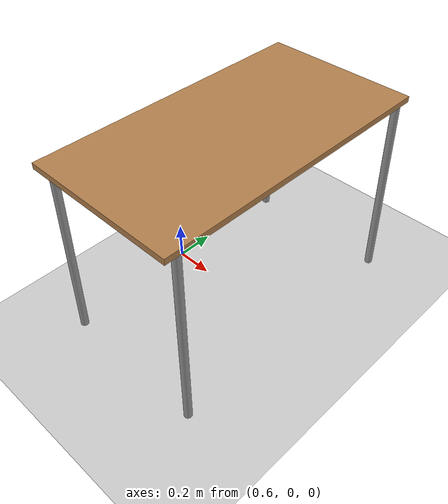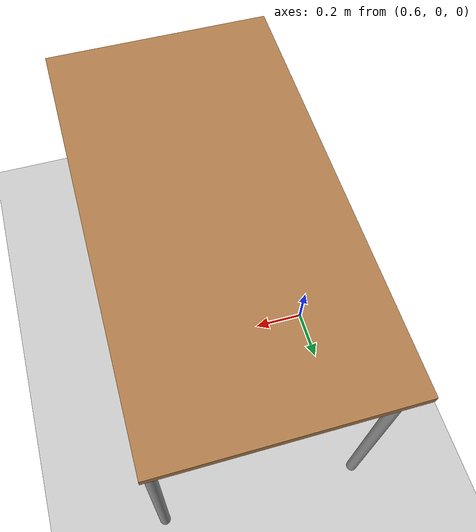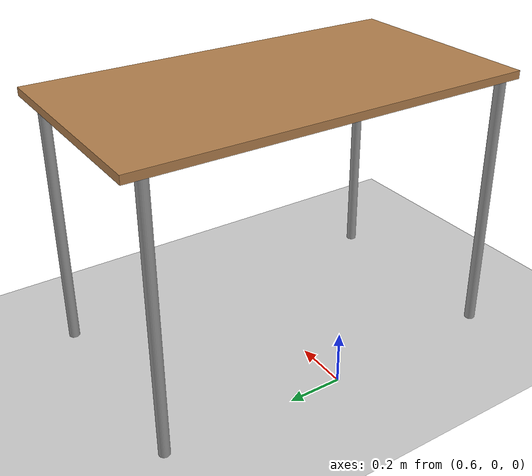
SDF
<sdf version="1.6">
 <world name="default">
  <include><uri>model://ground_plane</uri></include>
  <include><uri>model://sun</uri></include>
  <include><uri>model://table</uri><pose>1.0 0.0 0.0 0 0 1.57</pose><static>true</static></include>
  <physics type="ode">
   <max_step_size>0.001</max_step_size>
   <real_time_update_rate>0</real_time_update_rate>
   <gravity>0 0 -9.8</gravity>
   <ode>
    <solver><island_threads>1</island_threads><thread_position_correction>1</thread_position_correction></solver>
   </ode>
  </physics>
 </world>
</sdf>

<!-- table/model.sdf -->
<sdf version="1.5">
  <model name="table">
    <static>true</static>
    <link name="link">
      <collision name="surface">
        <pose>0 0 1.0 0 0 0</pose>
        <geometry>
          <box>
            <size>1.5 0.8 0.03</size>
          </box>
        </geometry>
        <surface>
          <friction>
            <ode>
              <mu>0.6</mu>
              <mu2>0.6</mu2>
            </ode>
          </friction>
        </surface>
      </collision>
      <visual name="visual1">
        <pose>0 0 1.0 0 0 0</pose>
        <geometry>
          <box>
            <size>1.5 0.8 0.03</size>
          </box>
        </geometry>
        <material>
          <script>
            <uri>model://media/materials/scripts/gazebo.material</uri>
            <name>Gazebo/Wood</name>
          </script>
        </material>
      </visual>
      <collision name="front_left_leg">
        <pose>0.68 0.38 0.5 0 0 0</pose>
        <geometry>
          <cylinder>
            <radius>0.02</radius>
            <length>1.0</length>
          </cylinder>
        </geometry>
      </collision>
      <visual name="front_left_leg">
        <pose>0.68 0.38 0.5 0 0 0</pose>
        <geometry>
          <cylinder>
            <radius>0.02</radius>
            <length>1.0</length>
          </cylinder>
        </geometry>
        <material>
          <script>
            <uri>model://media/materials/scripts/gazebo.material</uri>
            <name>Gazebo/Grey</name>
          </script>
        </material>
      </visual>
      <collision name="front_right_leg">
        <pose>0.68 -0.38 0.5 0 0 0</pose>
        <geometry>
          <cylinder>
            <radius>0.02</radius>
            <length>1.0</length>
          </cylinder>
        </geometry>
      </collision>
      <visual name="front_right_leg">
        <pose>0.68 -0.38 0.5 0 0 0</pose>
        <geometry>
          <cylinder>
            <radius>0.02</radius>
            <length>1.0</length>
          </cylinder>
        </geometry>
        <material>
          <script>
            <uri>model://media/materials/scripts/gazebo.material</uri>
            <name>Gazebo/Grey</name>
          </script>
        </material>
      </visual>
      <collision name="back_right_leg">
        <pose>-0.68 -0.38 0.5 0 0 0</pose>
        <geometry>
          <cylinder>
            <radius>0.02</radius>
            <length>1.0</length>
          </cylinder>
        </geometry>
      </collision>
      <visual name="back_right_leg">
        <pose>-0.68 -0.38 0.5 0 0 0</pose>
        <geometry>
          <cylinder>
            <radius>0.02</radius>
            <length>1.0</length>
          </cylinder>
        </geometry>
        <material>
          <script>
            <uri>model://media/materials/scripts/gazebo.material</uri>
            <name>Gazebo/Grey</name>
          </script>
        </material>
      </visual>
      <collision name="back_left_leg">
        <pose>-0.68 0.38 0.5 0 0 0</pose>
        <geometry>
          <cylinder>
            <radius>0.02</radius>
            <length>1.0</length>
          </cylinder>
        </geometry>
      </collision>
      <visual name="back_left_leg">
        <pose>-0.68 0.38 0.5 0 0 0</pose>
        <geometry>
          <cylinder>
            <radius>0.02</radius>
            <length>1.0</length>
          </cylinder>
        </geometry>
        <material>
          <script>
            <uri>model://media/materials/scripts/gazebo.material</uri>
            <name>Gazebo/Grey</name>
          </script>
        </material>
      </visual>
    </link>
  </model>
</sdf>
